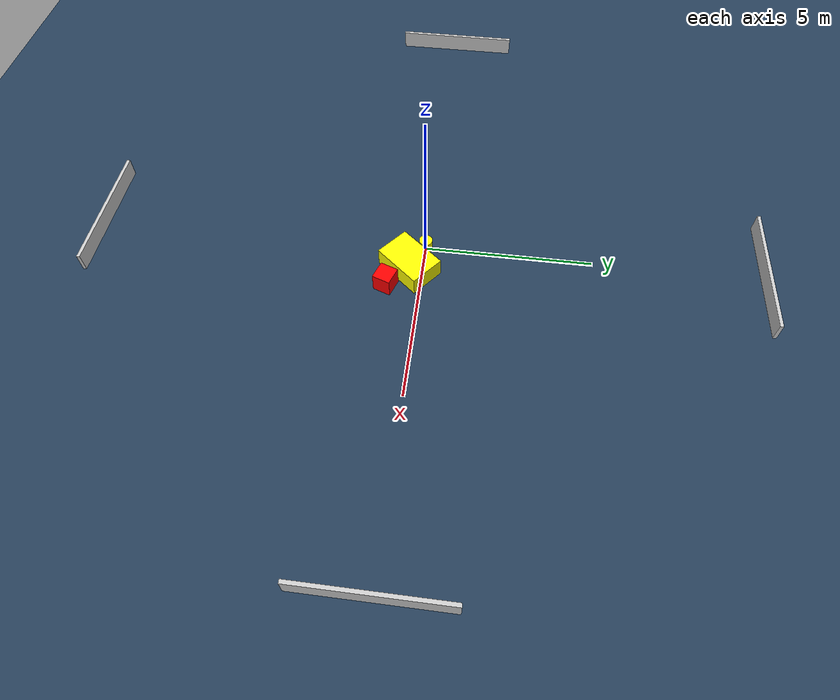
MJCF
<?xml version="1.0" ?>
<mujoco model="generated_environment">
  <option timestep="0.01" integrator="RK4" cone="elliptic"/>
  <default>
    <geom density="1"/>
  </default>
  <asset>
    <texture builtin="gradient" height="3072" name="skybox" rgb1="0.3 0.5 0.7" rgb2="0 0 0" type="skybox" width="512"/>
    <texture builtin="checker" height="300" name="groundplane" rgb1="0.2 0.3 0.4" rgb2="0.1 0.2 0.3" type="2d" width="300"/>
    <material name="groundplane" reflectance="0.2" texrepeat="5 5" texture="groundplane"/>
  </asset>
  <worldbody>
    <light dir="0 0 -1" directional="true" pos="0 0 1.5"/>
    <geom condim="3" friction="0.5 0.005 0.001" material="groundplane" name="floor" pos="0 0 0" size="0 0 0.05" type="plane"/>
    <body name="walls">
      <geom name="wall_1" condim="4" pos="-10.0 0.0 0.3" rgba="0.800000011920929 0.800000011920929 0.800000011920929 1.0" size="0.05 2.0 0.3" type="box"/>
      <geom name="wall_2" condim="4" pos="10.0 0.0 0.3" rgba="0.800000011920929 0.800000011920929 0.800000011920929 1.0" size="0.05 2.0 0.3" type="box"/>
      <geom name="wall_3" condim="4" pos="0.0 -10.0 0.3" rgba="0.800000011920929 0.800000011920929 0.800000011920929 1.0" size="2.0 0.05 0.3" type="box"/>
      <geom name="wall_4" condim="4" pos="0.0 10.0 0.3" rgba="0.800000011920929 0.800000011920929 0.800000011920929 1.0" size="2.0 0.05 0.3" type="box"/>
    </body>
    <body name="robot">
      <joint name="joint_x" type="slide" pos="0 0 0" axis="1 0 0"/>
      <joint name="joint_y" type="slide" pos="0 0 0" axis="0 1 0"/>
      <geom name="robot" type="cylinder" pos="0.0 0.0 0.2" size="0.2 0.2 0.0" mass="5.0" friction="1.0 0.005 0.0001" condim="4" rgba="1.0 1.0 0.0 1.0"/>
    </body>
    <body name="obstacle_1_movable">
      <geom name="obstacle_1_movable" condim="4" pos="0.8016614401508878 -0.3884641625830684 0.3" euler="0 0 320.34599116778656" friction="0.0 0.005 0.001" rgba="1.0 1.0 0.0 1.0" size="0.5332080935984189 0.7711134970425275 0.3" type="box" mass="0.1"/>
      <joint type="free"/>
    </body>
    <body name="obstacle_2_static">
      <geom name="obstacle_2_static" condim="4" pos="1.5031647883559518 -1.0000505545608558 0.3" euler="0 0 70.41173900773794" friction="0.0 0.005 0.001" rgba="1.0 0.0 0.0 1.0" size="0.27039038487641465 0.27091294664725885 0.3" type="box"/>
    </body>
  </worldbody>
  <actuator>
    <motor name="actuator_x" joint="joint_x" gear="1" ctrlrange="-1 1"/>
    <motor name="actuator_y" joint="joint_y" gear="1" ctrlrange="-1 1"/>
  </actuator>
</mujoco>
